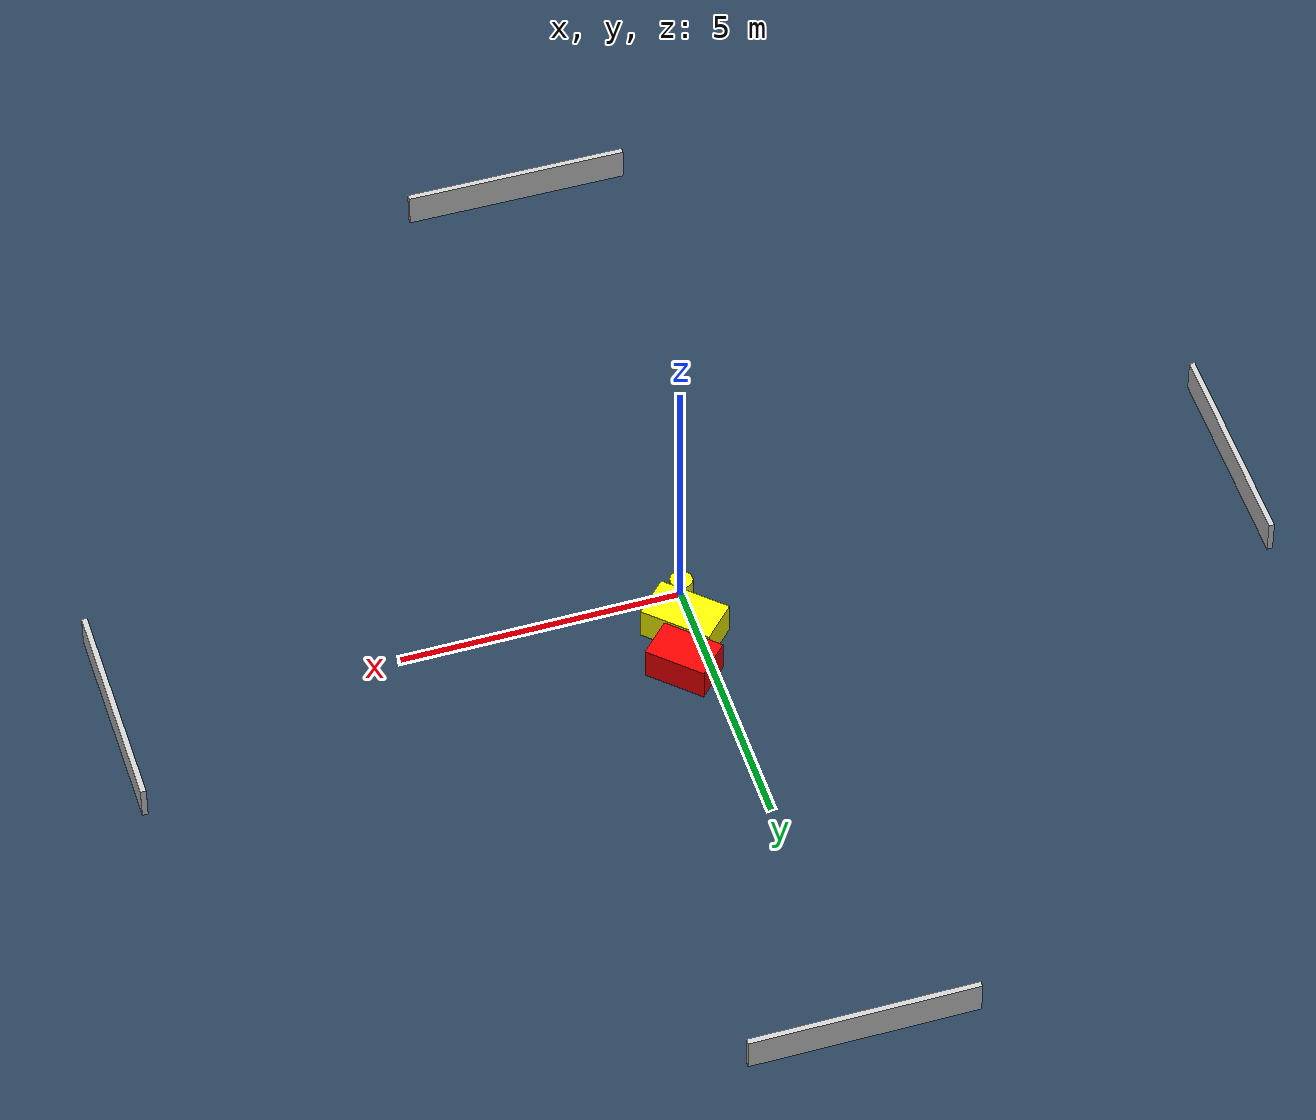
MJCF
<?xml version="1.0" ?>
<mujoco model="generated_environment">
  <option timestep="0.01" integrator="RK4" cone="elliptic"/>
  <default>
    <geom density="1"/>
  </default>
  <asset>
    <texture builtin="gradient" height="3072" name="skybox" rgb1="0.3 0.5 0.7" rgb2="0 0 0" type="skybox" width="512"/>
    <texture builtin="checker" height="300" name="groundplane" rgb1="0.2 0.3 0.4" rgb2="0.1 0.2 0.3" type="2d" width="300"/>
    <material name="groundplane" reflectance="0.2" texrepeat="5 5" texture="groundplane"/>
  </asset>
  <worldbody>
    <light dir="0 0 -1" directional="true" pos="0 0 1.5"/>
    <geom condim="3" friction="0.5 0.005 0.001" material="groundplane" name="floor" pos="0 0 0" size="0 0 0.05" type="plane"/>
    <body name="walls">
      <geom name="wall_1" condim="4" pos="-10.0 0.0 0.3" rgba="0.800000011920929 0.800000011920929 0.800000011920929 1.0" size="0.05 2.0 0.3" type="box"/>
      <geom name="wall_2" condim="4" pos="10.0 0.0 0.3" rgba="0.800000011920929 0.800000011920929 0.800000011920929 1.0" size="0.05 2.0 0.3" type="box"/>
      <geom name="wall_3" condim="4" pos="0.0 -10.0 0.3" rgba="0.800000011920929 0.800000011920929 0.800000011920929 1.0" size="2.0 0.05 0.3" type="box"/>
      <geom name="wall_4" condim="4" pos="0.0 10.0 0.3" rgba="0.800000011920929 0.800000011920929 0.800000011920929 1.0" size="2.0 0.05 0.3" type="box"/>
    </body>
    <body name="robot">
      <joint name="joint_x" type="slide" pos="0 0 0" axis="1 0 0"/>
      <joint name="joint_y" type="slide" pos="0 0 0" axis="0 1 0"/>
      <geom name="robot" type="cylinder" pos="0.0 0.0 0.2" size="0.2 0.2 0.0" mass="5.0" friction="1.0 0.005 0.0001" condim="4" rgba="1.0 1.0 0.0 1.0"/>
    </body>
    <body name="obstacle_1_movable">
      <geom name="obstacle_1_movable" condim="4" pos="0.1897483345749227 0.8258071545729889 0.3" euler="0 0 136.30664798574168" friction="0.0 0.005 0.001" rgba="1.0 1.0 0.0 1.0" size="0.6495766218331547 0.3920249601188478 0.3" type="box" mass="0.1"/>
      <joint type="free"/>
    </body>
    <body name="obstacle_2_static">
      <geom name="obstacle_2_static" condim="4" pos="0.46983054833238663 1.6636323730741467 0.3" euler="0 0 316.24408761913367" friction="0.0 0.005 0.001" rgba="1.0 0.0 0.0 1.0" size="0.5550418247647753 0.3637340934645823 0.3" type="box"/>
    </body>
  </worldbody>
  <actuator>
    <motor name="actuator_x" joint="joint_x" gear="1" ctrlrange="-1 1"/>
    <motor name="actuator_y" joint="joint_y" gear="1" ctrlrange="-1 1"/>
  </actuator>
</mujoco>
